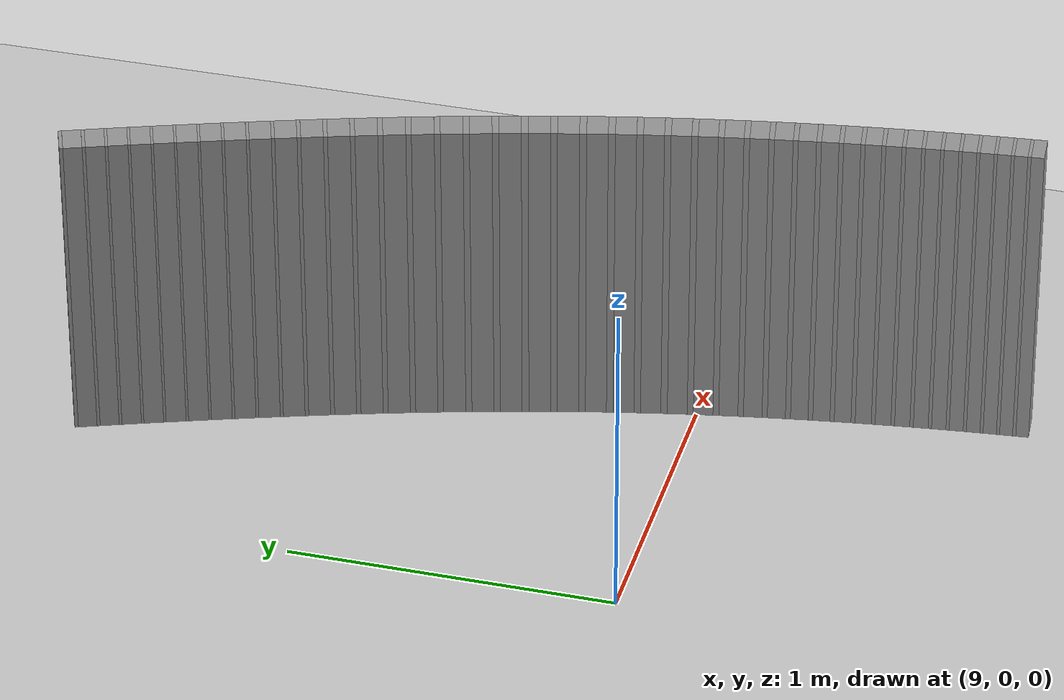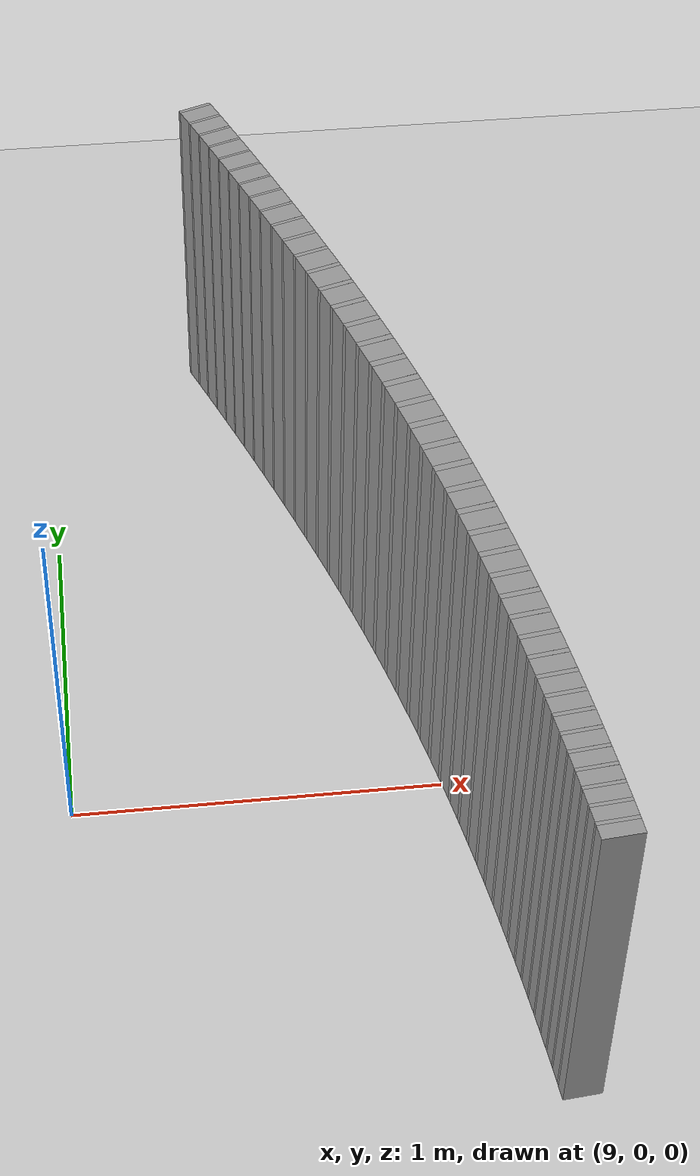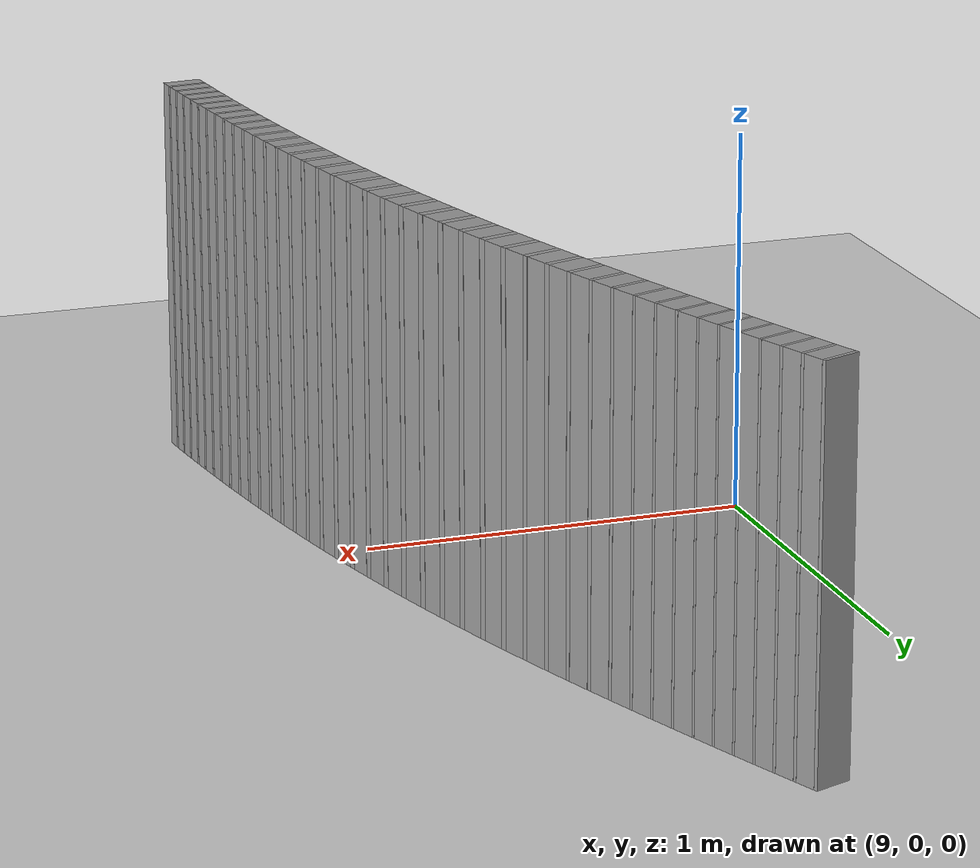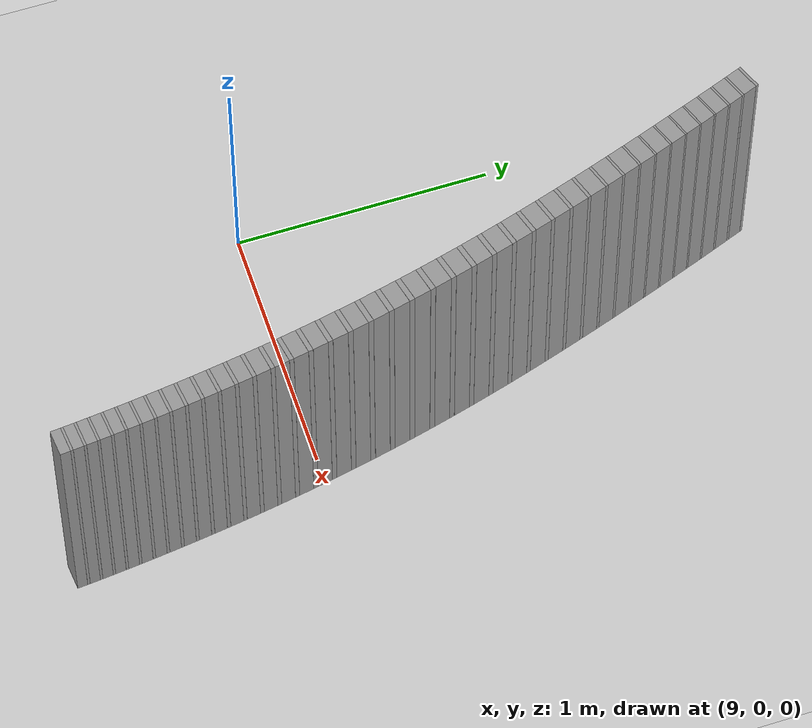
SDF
<sdf version="1.6">
 <world name="default">
  <include><uri>model://ground_plane</uri></include>
  <include><uri>model://sun</uri></include>
  <model name="wall_351_outward">
   <static>true</static>
   <link name="link">
    <collision name="collision">
     <geometry><box><size>0.010824604079195293 0.1 1.0</size></box></geometry>
    </collision>
    <visual name="visual">
     <geometry><box><size>0.010824604079195293 0.1 1.0</size></box></geometry>
     <material>
      <script><uri>file://media/materials/scripts/gazebo.material</uri><name>Gazebo/Gray</name></script>
     </material>
    </visual>
   </link>
   <pose>9.500279561167591 1.8287015190539146 0.5 0 0 -1.2032493338733514</pose>
  </model>
  <model name="wall_352_outward">
   <static>true</static>
   <link name="link">
    <collision name="collision">
     <geometry><box><size>0.05696659014981808 0.1 1.0</size></box></geometry>
    </collision>
    <visual name="visual">
     <geometry><box><size>0.05696659014981808 0.1 1.0</size></box></geometry>
     <material>
      <script><uri>file://media/materials/scripts/gazebo.material</uri><name>Gazebo/Gray</name></script>
     </material>
    </visual>
   </link>
   <pose>9.512387206424139 1.7970421554921758 0.5 0 0 -1.2059554881961672</pose>
  </model>
  <model name="wall_353_outward">
   <static>true</static>
   <link name="link">
    <collision name="collision">
     <geometry><box><size>0.009685782918412175 0.1 1.0</size></box></geometry>
    </collision>
    <visual name="visual">
     <geometry><box><size>0.009685782918412175 0.1 1.0</size></box></geometry>
     <material>
      <script><uri>file://media/materials/scripts/gazebo.material</uri><name>Gazebo/Gray</name></script>
     </material>
    </visual>
   </link>
   <pose>9.524267050212085 1.7659053089647365 0.5 0 0 -1.208376936292259</pose>
  </model>
  <model name="wall_354_outward">
   <static>true</static>
   <link name="link">
    <collision name="collision">
     <geometry><box><size>0.05791694749618283 0.1 1.0</size></box></geometry>
    </collision>
    <visual name="visual">
     <geometry><box><size>0.05791694749618283 0.1 1.0</size></box></geometry>
     <material>
      <script><uri>file://media/materials/scripts/gazebo.material</uri><name>Gazebo/Gray</name></script>
     </material>
    </visual>
   </link>
   <pose>9.536185305213749 1.7342748384451256 0.5 0 0 -1.2107983843880203</pose>
  </model>
  <model name="wall_355_outward">
   <static>true</static>
   <link name="link">
    <collision name="collision">
     <geometry><box><size>0.00872866118314216 0.1 1.0</size></box></geometry>
    </collision>
    <visual name="visual">
     <geometry><box><size>0.00872866118314216 0.1 1.0</size></box></geometry>
     <material>
      <script><uri>file://media/materials/scripts/gazebo.material</uri><name>Gazebo/Gray</name></script>
     </material>
    </visual>
   </link>
   <pose>9.547915089534156 1.7030847623465861 0.5 0 0 -1.2129805514156782</pose>
  </model>
  <model name="wall_356_outward">
   <static>true</static>
   <link name="link">
    <collision name="collision">
     <geometry><box><size>0.05895947732057909 0.1 1.0</size></box></geometry>
    </collision>
    <visual name="visual">
     <geometry><box><size>0.05895947732057909 0.1 1.0</size></box></geometry>
     <material>
      <script><uri>file://media/materials/scripts/gazebo.material</uri><name>Gazebo/Gray</name></script>
     </material>
    </visual>
   </link>
   <pose>9.55970799048509 1.6713617754438745 0.5 0 0 -1.2151627184432954</pose>
  </model>
  <model name="wall_357_outward">
   <static>true</static>
   <link name="link">
    <collision name="collision">
     <geometry><box><size>0.008040833445502221 0.1 1.0</size></box></geometry>
    </collision>
    <visual name="visual">
     <geometry><box><size>0.008040833445502221 0.1 1.0</size></box></geometry>
     <material>
      <script><uri>file://media/materials/scripts/gazebo.material</uri><name>Gazebo/Gray</name></script>
     </material>
    </visual>
   </link>
   <pose>9.571364642866486 1.639955050256243 0.5 0 0 -1.2171729281585102</pose>
  </model>
  <model name="wall_358_outward">
   <static>true</static>
   <link name="link">
    <collision name="collision">
     <geometry><box><size>0.06006452948803042 0.1 1.0</size></box></geometry>
    </collision>
    <visual name="visual">
     <geometry><box><size>0.06006452948803042 0.1 1.0</size></box></geometry>
     <material>
      <script><uri>file://media/materials/scripts/gazebo.material</uri><name>Gazebo/Gray</name></script>
     </material>
    </visual>
   </link>
   <pose>9.583100405023522 1.6079885597738917 0.5 0 0 -1.2191831378737743</pose>
  </model>
  <model name="wall_359_outward">
   <static>true</static>
   <link name="link">
    <collision name="collision">
     <geometry><box><size>0.007626050230554511 0.1 1.0</size></box></geometry>
    </collision>
    <visual name="visual">
     <geometry><box><size>0.007626050230554511 0.1 1.0</size></box></geometry>
     <material>
      <script><uri>file://media/materials/scripts/gazebo.material</uri><name>Gazebo/Gray</name></script>
     </material>
    </visual>
   </link>
   <pose>9.594750327050564 1.5762114839771881 0.5 0 0 -1.221089651586386</pose>
  </model>
  <model name="wall_360_outward">
   <static>true</static>
   <link name="link">
    <collision name="collision">
     <geometry><box><size>0.061197769607156366 0.1 1.0</size></box></geometry>
    </collision>
    <visual name="visual">
     <geometry><box><size>0.061197769607156366 0.1 1.0</size></box></geometry>
     <material>
      <script><uri>file://media/materials/scripts/gazebo.material</uri><name>Gazebo/Gray</name></script>
     </material>
    </visual>
   </link>
   <pose>9.606485787848996 1.5438624796644613 0.5 0 0 -1.2229961652989796</pose>
  </model>
  <model name="wall_361_outward">
   <static>true</static>
   <link name="link">
    <collision name="collision">
     <geometry><box><size>0.00750493864559816 0.1 1.0</size></box></geometry>
    </collision>
    <visual name="visual">
     <geometry><box><size>0.00750493864559816 0.1 1.0</size></box></geometry>
     <material>
      <script><uri>file://media/materials/scripts/gazebo.material</uri><name>Gazebo/Gray</name></script>
     </material>
    </visual>
   </link>
   <pose>9.618187156223485 1.5115655277296538 0.5 0 0 -1.2248724010613041</pose>
  </model>
  <model name="wall_362_outward">
   <static>true</static>
   <link name="link">
    <collision name="collision">
     <geometry><box><size>0.062325443852529264 0.1 1.0</size></box></geometry>
    </collision>
    <visual name="visual">
     <geometry><box><size>0.062325443852529264 0.1 1.0</size></box></geometry>
     <material>
      <script><uri>file://media/materials/scripts/gazebo.material</uri><name>Gazebo/Gray</name></script>
     </material>
    </visual>
   </link>
   <pose>9.629970687389939 1.4786988491393434 0.5 0 0 -1.2267486368233793</pose>
  </model>
  <model name="wall_363_outward">
   <static>true</static>
   <link name="link">
    <collision name="collision">
     <geometry><box><size>0.007730977619918335 0.1 1.0</size></box></geometry>
    </collision>
    <visual name="visual">
     <geometry><box><size>0.007730977619918335 0.1 1.0</size></box></geometry>
     <material>
      <script><uri>file://media/materials/scripts/gazebo.material</uri><name>Gazebo/Gray</name></script>
     </material>
    </visual>
   </link>
   <pose>9.641778678761174 1.4457208801724346 0.5 0 0 -1.2286813824317024</pose>
  </model>
  <model name="wall_364_outward">
   <static>true</static>
   <link name="link">
    <collision name="collision">
     <geometry><box><size>0.06341487864373915 0.1 1.0</size></box></geometry>
    </collision>
    <visual name="visual">
     <geometry><box><size>0.06341487864373915 0.1 1.0</size></box></geometry>
     <material>
      <script><uri>file://media/materials/scripts/gazebo.material</uri><name>Gazebo/Gray</name></script>
     </material>
    </visual>
   </link>
   <pose>9.653654941701273 1.4121889977825548 0.5 0 0 -1.2306141280399456</pose>
  </model>
  <model name="wall_365_outward">
   <static>true</static>
   <link name="link">
    <collision name="collision">
     <geometry><box><size>0.008219961241809787 0.1 1.0</size></box></geometry>
    </collision>
    <visual name="visual">
     <geometry><box><size>0.008219961241809787 0.1 1.0</size></box></geometry>
     <material>
      <script><uri>file://media/materials/scripts/gazebo.material</uri><name>Gazebo/Gray</name></script>
     </material>
    </visual>
   </link>
   <pose>9.665597776180087 1.3784213249927175 0.5 0 0 -1.2326691197968294</pose>
  </model>
  <model name="wall_366_outward">
   <static>true</static>
   <link name="link">
    <collision name="collision">
     <geometry><box><size>0.06443366127297623 0.1 1.0</size></box></geometry>
    </collision>
    <visual name="visual">
     <geometry><box><size>0.06443366127297623 0.1 1.0</size></box></geometry>
     <material>
      <script><uri>file://media/materials/scripts/gazebo.material</uri><name>Gazebo/Gray</name></script>
     </material>
    </visual>
   </link>
   <pose>9.677585660440117 1.3441295287736508 0.5 0 0 -1.2347241115535736</pose>
  </model>
  <model name="wall_367_outward">
   <static>true</static>
   <link name="link">
    <collision name="collision">
     <geometry><box><size>0.008978671673354817 0.1 1.0</size></box></geometry>
    </collision>
    <visual name="visual">
     <geometry><box><size>0.008978671673354817 0.1 1.0</size></box></geometry>
     <material>
      <script><uri>file://media/materials/scripts/gazebo.material</uri><name>Gazebo/Gray</name></script>
     </material>
    </visual>
   </link>
   <pose>9.689681161390332 1.3094734934380263 0.5 0 0 -1.2369687813568935</pose>
  </model>
  <model name="wall_368_outward">
   <static>true</static>
   <link name="link">
    <collision name="collision">
     <geometry><box><size>0.0653541927147452 0.1 1.0</size></box></geometry>
    </collision>
    <visual name="visual">
     <geometry><box><size>0.0653541927147452 0.1 1.0</size></box></geometry>
     <material>
      <script><uri>file://media/materials/scripts/gazebo.material</uri><name>Gazebo/Gray</name></script>
     </material>
    </visual>
   </link>
   <pose>9.701789849512714 1.2743348734474278 0.5 0 0 -1.2392134511602302</pose>
  </model>
  <model name="wall_369_outward">
   <static>true</static>
   <link name="link">
    <collision name="collision">
     <geometry><box><size>0.010012991191626491 0.1 1.0</size></box></geometry>
    </collision>
    <visual name="visual">
     <geometry><box><size>0.010012991191626491 0.1 1.0</size></box></geometry>
     <material>
      <script><uri>file://media/materials/scripts/gazebo.material</uri><name>Gazebo/Gray</name></script>
     </material>
    </visual>
   </link>
   <pose>9.714045514460347 1.238699908117857 0.5 0 0 -1.2417167015724928</pose>
  </model>
  <model name="wall_370_outward">
   <static>true</static>
   <link name="link">
    <collision name="collision">
     <geometry><box><size>0.06615063007660306 0.1 1.0</size></box></geometry>
    </collision>
    <visual name="visual">
     <geometry><box><size>0.06615063007660306 0.1 1.0</size></box></geometry>
     <material>
      <script><uri>file://media/materials/scripts/gazebo.material</uri><name>Gazebo/Gray</name></script>
     </material>
    </visual>
   </link>
   <pose>9.72627410973893 1.202634901240741 0.5 0 0 -1.244219951984691</pose>
  </model>
  <model name="wall_371_outward">
   <static>true</static>
   <link name="link">
    <collision name="collision">
     <geometry><box><size>0.011228370497946028 0.1 1.0</size></box></geometry>
    </collision>
    <visual name="visual">
     <geometry><box><size>0.011228370497946028 0.1 1.0</size></box></geometry>
     <material>
      <script><uri>file://media/materials/scripts/gazebo.material</uri><name>Gazebo/Gray</name></script>
     </material>
    </visual>
   </link>
   <pose>9.73867085446103 1.1659852533629045 0.5 0 0 -1.2470270482957087</pose>
  </model>
  <model name="wall_372_outward">
   <static>true</static>
   <link name="link">
    <collision name="collision">
     <geometry><box><size>0.06680445289519221 0.1 1.0</size></box></geometry>
    </collision>
    <visual name="visual">
     <geometry><box><size>0.06680445289519221 0.1 1.0</size></box></geometry>
     <material>
      <script><uri>file://media/materials/scripts/gazebo.material</uri><name>Gazebo/Gray</name></script>
     </material>
    </visual>
   </link>
   <pose>9.750994690114307 1.1289663125514702 0.5 0 0 -1.2498341446067953</pose>
  </model>
  <model name="wall_373_outward">
   <static>true</static>
   <link name="link">
    <collision name="collision">
     <geometry><box><size>0.012600490278203706 0.1 1.0</size></box></geometry>
    </collision>
    <visual name="visual">
     <geometry><box><size>0.012600490278203706 0.1 1.0</size></box></geometry>
     <material>
      <script><uri>file://media/materials/scripts/gazebo.material</uri><name>Gazebo/Gray</name></script>
     </material>
    </visual>
   </link>
   <pose>9.763501173126208 1.0912851230202856 0.5 0 0 -1.2529842723862985</pose>
  </model>
  <model name="wall_374_outward">
   <static>true</static>
   <link name="link">
    <collision name="collision">
     <geometry><box><size>0.06730036058711637 0.1 1.0</size></box></geometry>
    </collision>
    <visual name="visual">
     <geometry><box><size>0.06730036058711637 0.1 1.0</size></box></geometry>
     <material>
      <script><uri>file://media/materials/scripts/gazebo.material</uri><name>Gazebo/Gray</name></script>
     </material>
    </visual>
   </link>
   <pose>9.775884493053969 1.0533023930494838 0.5 0 0 -1.2561344001657744</pose>
  </model>
  <model name="wall_375_outward">
   <static>true</static>
   <link name="link">
    <collision name="collision">
     <geometry><box><size>0.014037177138689027 0.1 1.0</size></box></geometry>
    </collision>
    <visual name="visual">
     <geometry><box><size>0.014037177138689027 0.1 1.0</size></box></geometry>
     <material>
      <script><uri>file://media/materials/scripts/gazebo.material</uri><name>Gazebo/Gray</name></script>
     </material>
    </visual>
   </link>
   <pose>9.788447839919375 1.0146228355571443 0.5 0 0 -1.2596437016533153</pose>
  </model>
  <model name="wall_376_outward">
   <static>true</static>
   <link name="link">
    <collision name="collision">
     <geometry><box><size>0.06762984032936992 0.1 1.0</size></box></geometry>
    </collision>
    <visual name="visual">
     <geometry><box><size>0.06762984032936992 0.1 1.0</size></box></geometry>
     <material>
      <script><uri>file://media/materials/scripts/gazebo.material</uri><name>Gazebo/Gray</name></script>
     </material>
    </visual>
   </link>
   <pose>9.800836236359636 0.9757139657923826 0.5 0 0 -1.2631530031410225</pose>
  </model>
  <model name="wall_377_outward">
   <static>true</static>
   <link name="link">
    <collision name="collision">
     <geometry><box><size>0.01550620877102754 0.1 1.0</size></box></geometry>
    </collision>
    <visual name="visual">
     <geometry><box><size>0.01550620877102754 0.1 1.0</size></box></geometry>
     <material>
      <script><uri>file://media/materials/scripts/gazebo.material</uri><name>Gazebo/Gray</name></script>
     </material>
    </visual>
   </link>
   <pose>9.813394931405 0.9360885206347724 0.5 0 0 -1.2670295650431065</pose>
  </model>
  <model name="wall_378_outward">
   <static>true</static>
   <link name="link">
    <collision name="collision">
     <geometry><box><size>0.06778951938092423 0.1 1.0</size></box></geometry>
    </collision>
    <visual name="visual">
     <geometry><box><size>0.06778951938092423 0.1 1.0</size></box></geometry>
     <material>
      <script><uri>file://media/materials/scripts/gazebo.material</uri><name>Gazebo/Gray</name></script>
     </material>
    </visual>
   </link>
   <pose>9.82572704473486 0.8963083796875166 0.5 0 0 -1.2709061269451785</pose>
  </model>
  <model name="wall_379_outward">
   <static>true</static>
   <link name="link">
    <collision name="collision">
     <geometry><box><size>0.016924516006018655 0.1 1.0</size></box></geometry>
    </collision>
    <visual name="visual">
     <geometry><box><size>0.016924516006018655 0.1 1.0</size></box></geometry>
     <material>
      <script><uri>file://media/materials/scripts/gazebo.material</uri><name>Gazebo/Gray</name></script>
     </material>
    </visual>
   </link>
   <pose>9.838205726925029 0.855831296000987 0.5 0 0 -1.2751372685713551</pose>
  </model>
  <model name="wall_380_outward">
   <static>true</static>
   <link name="link">
    <collision name="collision">
     <geometry><box><size>0.06777948563504108 0.1 1.0</size></box></geometry>
    </collision>
    <visual name="visual">
     <geometry><box><size>0.06777948563504108 0.1 1.0</size></box></geometry>
     <material>
      <script><uri>file://media/materials/scripts/gazebo.material</uri><name>Gazebo/Gray</name></script>
     </material>
    </visual>
   </link>
   <pose>9.850408586761766 0.8152754449909085 0.5 0 0 -1.2793684101975868</pose>
  </model>
  <model name="wall_381_outward">
   <static>true</static>
   <link name="link">
    <collision name="collision">
     <geometry><box><size>0.01820133226762513 0.1 1.0</size></box></geometry>
    </collision>
    <visual name="visual">
     <geometry><box><size>0.01820133226762513 0.1 1.0</size></box></geometry>
     <material>
      <script><uri>file://media/materials/scripts/gazebo.material</uri><name>Gazebo/Gray</name></script>
     </material>
    </visual>
   </link>
   <pose>9.862720908736062 0.7740859365769072 0.5 0 0 -1.2839187589674386</pose>
  </model>
  <model name="wall_382_outward">
   <static>true</static>
   <link name="link">
    <collision name="collision">
     <geometry><box><size>0.06760352954791443 0.1 1.0</size></box></geometry>
    </collision>
    <visual name="visual">
     <geometry><box><size>0.06760352954791443 0.1 1.0</size></box></geometry>
     <material>
      <script><uri>file://media/materials/scripts/gazebo.material</uri><name>Gazebo/Gray</name></script>
     </material>
    </visual>
   </link>
   <pose>9.874712905997761 0.7328936531972203 0.5 0 0 -1.288469107737367</pose>
  </model>
  <model name="wall_383_outward">
   <static>true</static>
   <link name="link">
    <collision name="collision">
     <geometry><box><size>0.01930399747526775 0.1 1.0</size></box></geometry>
    </collision>
    <visual name="visual">
     <geometry><box><size>0.01930399747526775 0.1 1.0</size></box></geometry>
     <material>
      <script><uri>file://media/materials/scripts/gazebo.material</uri><name>Gazebo/Gray</name></script>
     </material>
    </visual>
   </link>
   <pose>9.886773986775186 0.6911473683900671 0.5 0 0 -1.2932951258395073</pose>
  </model>
  <model name="wall_384_outward">
   <static>true</static>
   <link name="link">
    <collision name="collision">
     <geometry><box><size>0.06726861556545626 0.1 1.0</size></box></geometry>
    </collision>
    <visual name="visual">
     <geometry><box><size>0.06726861556545626 0.1 1.0</size></box></geometry>
     <material>
      <script><uri>file://media/materials/scripts/gazebo.material</uri><name>Gazebo/Gray</name></script>
     </material>
    </visual>
   </link>
   <pose>9.898476196853656 0.6494729751671713 0.5 0 0 -1.2981211439416696</pose>
  </model>
  <model name="wall_385_outward">
   <static>true</static>
   <link name="link">
    <collision name="collision">
     <geometry><box><size>0.020187158126776683 0.1 1.0</size></box></geometry>
    </collision>
    <visual name="visual">
     <geometry><box><size>0.020187158126776683 0.1 1.0</size></box></geometry>
     <material>
      <script><uri>file://media/materials/scripts/gazebo.material</uri><name>Gazebo/Gray</name></script>
     </material>
    </visual>
   </link>
   <pose>9.910203406328362 0.6073470686599498 0.5 0 0 -1.3031679548972952</pose>
  </model>
  <model name="wall_386_outward">
   <static>true</static>
   <link name="link">
    <collision name="collision">
     <geometry><box><size>0.06678113001132327 0.1 1.0</size></box></geometry>
    </collision>
    <visual name="visual">
     <geometry><box><size>0.06678113001132327 0.1 1.0</size></box></geometry>
     <material>
      <script><uri>file://media/materials/scripts/gazebo.material</uri><name>Gazebo/Gray</name></script>
     </material>
    </visual>
   </link>
   <pose>9.92153994145281 0.5653667736092367 0.5 0 0 -1.3082147658529208</pose>
  </model>
  <model name="wall_387_outward">
   <static>true</static>
   <link name="link">
    <collision name="collision">
     <geometry><box><size>0.020806349528600988 0.1 1.0</size></box></geometry>
    </collision>
    <visual name="visual">
     <geometry><box><size>0.020806349528600988 0.1 1.0</size></box></geometry>
     <material>
      <script><uri>file://media/materials/scripts/gazebo.material</uri><name>Gazebo/Gray</name></script>
     </material>
    </visual>
   </link>
   <pose>9.93285538426418 0.5230602374901547 0.5 0 0 -1.3134163766915676</pose>
  </model>
  <model name="wall_388_outward">
   <static>true</static>
   <link name="link">
    <collision name="collision">
     <geometry><box><size>0.0661501846387857 0.1 1.0</size></box></geometry>
    </collision>
    <visual name="visual">
     <geometry><box><size>0.0661501846387857 0.1 1.0</size></box></geometry>
     <material>
      <script><uri>file://media/materials/scripts/gazebo.material</uri><name>Gazebo/Gray</name></script>
     </material>
    </visual>
   </link>
   <pose>9.943756186563618 0.4809707743431778 0.5 0 0 -1.3186179875300492</pose>
  </model>
  <model name="wall_389_outward">
   <static>true</static>
   <link name="link">
    <collision name="collision">
     <geometry><box><size>0.021141537625596517 0.1 1.0</size></box></geometry>
    </collision>
    <visual name="visual">
     <geometry><box><size>0.021141537625596517 0.1 1.0</size></box></geometry>
     <material>
      <script><uri>file://media/materials/scripts/gazebo.material</uri><name>Gazebo/Gray</name></script>
     </material>
    </visual>
   </link>
   <pose>9.954592299248988 0.4386915821940718 0.5 0 0 -1.3239033965449751</pose>
  </model>
  <model name="wall_390_outward">
   <static>true</static>
   <link name="link">
    <collision name="collision">
     <geometry><box><size>0.06538371986400028 0.1 1.0</size></box></geometry>
    </collision>
    <visual name="visual">
     <geometry><box><size>0.06538371986400028 0.1 1.0</size></box></geometry>
     <material>
      <script><uri>file://media/materials/scripts/gazebo.material</uri><name>Gazebo/Gray</name></script>
     </material>
    </visual>
   </link>
   <pose>9.964997691154998 0.3966990446272436 0.5 0 0 -1.329188805559738</pose>
  </model>
  <model name="wall_391_outward">
   <static>true</static>
   <link name="link">
    <collision name="collision">
     <geometry><box><size>0.021191313764563614 0.1 1.0</size></box></geometry>
    </collision>
    <visual name="visual">
     <geometry><box><size>0.021191313764563614 0.1 1.0</size></box></geometry>
     <material>
      <script><uri>file://media/materials/scripts/gazebo.material</uri><name>Gazebo/Gray</name></script>
     </material>
    </visual>
   </link>
   <pose>9.975300286291112 0.3546555442595535 0.5 0 0 -1.3344866587835131</pose>
  </model>
  <model name="wall_392_outward">
   <static>true</static>
   <link name="link">
    <collision name="collision">
     <geometry><box><size>0.06449062980923927 0.1 1.0</size></box></geometry>
    </collision>
    <visual name="visual">
     <geometry><box><size>0.06449062980923927 0.1 1.0</size></box></geometry>
     <material>
      <script><uri>file://media/materials/scripts/gazebo.material</uri><name>Gazebo/Gray</name></script>
     </material>
    </visual>
   </link>
   <pose>9.98516387432132 0.31296563054682913 0.5 0 0 -1.3397845120073384</pose>
  </model>
  <model name="wall_393_outward">
   <static>true</static>
   <link name="link">
    <collision name="collision">
     <geometry><box><size>0.02100386026287018 0.1 1.0</size></box></geometry>
    </collision>
    <visual name="visual">
     <geometry><box><size>0.02100386026287018 0.1 1.0</size></box></geometry>
     <material>
      <script><uri>file://media/materials/scripts/gazebo.material</uri><name>Gazebo/Gray</name></script>
     </material>
    </visual>
   </link>
   <pose>9.994897680195956 0.2713414711660062 0.5 0 0 -1.3450355012038853</pose>
  </model>
  <model name="wall_394_outward">
   <static>true</static>
   <link name="link">
    <collision name="collision">
     <geometry><box><size>0.0634804287747851 0.1 1.0</size></box></geometry>
    </collision>
    <visual name="visual">
     <geometry><box><size>0.0634804287747851 0.1 1.0</size></box></geometry>
     <material>
      <script><uri>file://media/materials/scripts/gazebo.material</uri><name>Gazebo/Gray</name></script>
     </material>
    </visual>
   </link>
   <pose>10.004190962085417 0.23013437839878728 0.5 0 0 -1.350286490400352</pose>
  </model>
  <model name="wall_395_outward">
   <static>true</static>
   <link name="link">
    <collision name="collision">
     <geometry><box><size>0.020565626386248845 0.1 1.0</size></box></geometry>
    </collision>
    <visual name="visual">
     <geometry><box><size>0.020565626386248845 0.1 1.0</size></box></geometry>
     <material>
      <script><uri>file://media/materials/scripts/gazebo.material</uri><name>Gazebo/Gray</name></script>
     </material>
    </visual>
   </link>
   <pose>10.013330921132034 0.18911746276526603 0.5 0 0 -1.3554279196485495</pose>
  </model>
  <model name="wall_396_outward">
   <static>true</static>
   <link name="link">
    <collision name="collision">
     <geometry><box><size>0.06236197029041892 0.1 1.0</size></box></geometry>
    </collision>
    <visual name="visual">
     <geometry><box><size>0.06236197029041892 0.1 1.0</size></box></geometry>
     <material>
      <script><uri>file://media/materials/scripts/gazebo.material</uri><name>Gazebo/Gray</name></script>
     </material>
    </visual>
   </link>
   <pose>10.022035340559508 0.14857771462211888 0.5 0 0 -1.3605693488967685</pose>
  </model>
  <model name="wall_397_outward">
   <static>true</static>
   <link name="link">
    <collision name="collision">
     <geometry><box><size>0.019933269371030814 0.1 1.0</size></box></geometry>
    </collision>
    <visual name="visual">
     <geometry><box><size>0.019933269371030814 0.1 1.0</size></box></geometry>
     <material>
      <script><uri>file://media/materials/scripts/gazebo.material</uri><name>Gazebo/Gray</name></script>
     </material>
    </visual>
   </link>
   <pose>10.030573504224158 0.10832577477516836 0.5 0 0 -1.36555268686521</pose>
  </model>
  <model name="wall_398_outward">
   <static>true</static>
   <link name="link">
    <collision name="collision">
     <geometry><box><size>0.06114658493690783 0.1 1.0</size></box></geometry>
    </collision>
    <visual name="visual">
     <geometry><box><size>0.06114658493690783 0.1 1.0</size></box></geometry>
     <material>
      <script><uri>file://media/materials/scripts/gazebo.material</uri><name>Gazebo/Gray</name></script>
     </material>
    </visual>
   </link>
   <pose>10.038686536106361 0.06860604617326355 0.5 0 0 -1.370536024833735</pose>
  </model>
  <model name="wall_399_outward">
   <static>true</static>
   <link name="link">
    <collision name="collision">
     <geometry><box><size>0.01918659729865957 0.1 1.0</size></box></geometry>
    </collision>
    <visual name="visual">
     <geometry><box><size>0.01918659729865957 0.1 1.0</size></box></geometry>
     <material>
      <script><uri>file://media/materials/scripts/gazebo.material</uri><name>Gazebo/Gray</name></script>
     </material>
    </visual>
   </link>
   <pose>10.0466315346316 0.029233145692770857 0.5 0 0 -1.3753326925520384</pose>
  </model>
  <model name="wall_400_outward">
   <static>true</static>
   <link name="link">
    <collision name="collision">
     <geometry><box><size>0.05984606902844167 0.1 1.0</size></box></geometry>
    </collision>
    <visual name="visual">
     <geometry><box><size>0.05984606902844167 0.1 1.0</size></box></geometry>
     <material>
      <script><uri>file://media/materials/scripts/gazebo.material</uri><name>Gazebo/Gray</name></script>
     </material>
    </visual>
   </link>
   <pose>10.054165586638948 -0.009558245650663433 0.5 0 0 -1.3801293602703</pose>
  </model>
  <model name="wall_401_outward">
   <static>true</static>
   <link name="link">
    <collision name="collision">
     <geometry><box><size>0.018289415067074946 0.1 1.0</size></box></geometry>
    </collision>
    <visual name="visual">
     <geometry><box><size>0.018289415067074946 0.1 1.0</size></box></geometry>
     <material>
      <script><uri>file://media/materials/scripts/gazebo.material</uri><name>Gazebo/Gray</name></script>
     </material>
    </visual>
   </link>
   <pose>10.061528390327078 -0.047925834443187654 0.5 0 0 -1.3847017299691708</pose>
  </model>
  <model name="wall_402_outward">
   <static>true</static>
   <link name="link">
    <collision name="collision">
     <geometry><box><size>0.05847254540541961 0.1 1.0</size></box></geometry>
    </collision>
    <visual name="visual">
     <geometry><box><size>0.05847254540541961 0.1 1.0</size></box></geometry>
     <material>
      <script><uri>file://media/materials/scripts/gazebo.material</uri><name>Gazebo/Gray</name></script>
     </material>
    </visual>
   </link>
   <pose>10.068498302104476 -0.08566857393306032 0.5 0 0 -1.389274099667985</pose>
  </model>
  <model name="wall_403_outward">
   <static>true</static>
   <link name="link">
    <collision name="collision">
     <geometry><box><size>0.017375664238890105 0.1 1.0</size></box></geometry>
    </collision>
    <visual name="visual">
     <geometry><box><size>0.017375664238890105 0.1 1.0</size></box></geometry>
     <material>
      <script><uri>file://media/materials/scripts/gazebo.material</uri><name>Gazebo/Gray</name></script>
     </material>
    </visual>
   </link>
   <pose>10.075307492980366 -0.12297631915141954 0.5 0 0 -1.393618029389123</pose>
  </model>
  <model name="wall_404_outward">
   <static>true</static>
   <link name="link">
    <collision name="collision">
     <geometry><box><size>0.05704011917131678 0.1 1.0</size></box></geometry>
    </collision>
    <visual name="visual">
     <geometry><box><size>0.05704011917131678 0.1 1.0</size></box></geometry>
     <material>
      <script><uri>file://media/materials/scripts/gazebo.material</uri><name>Gazebo/Gray</name></script>
     </material>
    </visual>
   </link>
   <pose>10.08174348953245 -0.15962329007719245 0.5 0 0 -1.3979619591103247</pose>
  </model>
  <model name="wall_405_outward">
   <static>true</static>
   <link name="link">
    <collision name="collision">
     <geometry><box><size>0.016406116898297452 0.1 1.0</size></box></geometry>
    </collision>
    <visual name="visual">
     <geometry><box><size>0.016406116898297452 0.1 1.0</size></box></geometry>
     <material>
      <script><uri>file://media/materials/scripts/gazebo.material</uri><name>Gazebo/Gray</name></script>
     </material>
    </visual>
   </link>
   <pose>10.088025798515048 -0.19580499894184433 0.5 0 0 -1.4020634998346782</pose>
  </model>
  <model name="wall_406_outward">
   <static>true</static>
   <link name="link">
    <collision name="collision">
     <geometry><box><size>0.05556135067396677 0.1 1.0</size></box></geometry>
    </collision>
    <visual name="visual">
     <geometry><box><size>0.05556135067396677 0.1 1.0</size></box></geometry>
     <material>
      <script><uri>file://media/materials/scripts/gazebo.material</uri><name>Gazebo/Gray</name></script>
     </material>
    </visual>
   </link>
   <pose>10.093956301620612 -0.23129660916820233 0.5 0 0 -1.40616504055903</pose>
  </model>
  <model name="wall_407_outward">
   <static>true</static>
   <link name="link">
    <collision name="collision">
     <geometry><box><size>0.015480412930420804 0.1 1.0</size></box></geometry>
    </collision>
    <visual name="visual">
     <geometry><box><size>0.015480412930420804 0.1 1.0</size></box></geometry>
     <material>
      <script><uri>file://media/materials/scripts/gazebo.material</uri><name>Gazebo/Gray</name></script>
     </material>
    </visual>
   </link>
   <pose>10.099748209833919 -0.2663420599801817 0.5 0 0 -1.410035153452588</pose>
  </model>
  <model name="wall_408_outward">
   <static>true</static>
   <link name="link">
    <collision name="collision">
     <geometry><box><size>0.05405234113677654 0.1 1.0</size></box></geometry>
    </collision>
    <visual name="visual">
     <geometry><box><size>0.05405234113677654 0.1 1.0</size></box></geometry>
     <material>
      <script><uri>file://media/materials/scripts/gazebo.material</uri><name>Gazebo/Gray</name></script>
     </material>
    </visual>
   </link>
   <pose>10.105209972495075 -0.30067669245974676 0.5 0 0 -1.4139052663461178</pose>
  </model>
  <model name="wall_409_outward">
   <static>true</static>
   <link name="link">
    <collision name="collision">
     <geometry><box><size>0.014568164671066716 0.1 1.0</size></box></geometry>
    </collision>
    <visual name="visual">
     <geometry><box><size>0.014568164671066716 0.1 1.0</size></box></geometry>
     <material>
      <script><uri>file://media/materials/scripts/gazebo.material</uri><name>Gazebo/Gray</name></script>
     </material>
    </visual>
   </link>
   <pose>10.110544677510072 -0.33456963811915685 0.5 0 0 -1.417547315565488</pose>
  </model>
  <model name="wall_410_outward">
   <static>true</static>
   <link name="link">
    <collision name="collision">
     <geometry><box><size>0.05252701804898577 0.1 1.0</size></box></geometry>
    </collision>
    <visual name="visual">
     <geometry><box><size>0.05252701804898577 0.1 1.0</size></box></geometry>
     <material>
      <script><uri>file://media/materials/scripts/gazebo.material</uri><name>Gazebo/Gray</name></script>
     </material>
    </visual>
   </link>
   <pose>10.115571154497893 -0.36773849214783977 0.5 0 0 -1.4211893647849885</pose>
  </model>
  <model name="wall_411_outward">
   <static>true</static>
   <link name="link">
    <collision name="collision">
     <geometry><box><size>0.013707110111743503 0.1 1.0</size></box></geometry>
    </collision>
    <visual name="visual">
     <geometry><box><size>0.013707110111743503 0.1 1.0</size></box></geometry>
     <material>
      <script><uri>file://media/materials/scripts/gazebo.material</uri><name>Gazebo/Gray</name></script>
     </material>
    </visual>
   </link>
   <pose>10.120484006953681 -0.40048909062112586 0.5 0 0 -1.4246161490197198</pose>
  </model>
  <model name="wall_412_outward">
   <static>true</static>
   <link name="link">
    <collision name="collision">
     <geometry><box><size>0.051000068948404066 0.1 1.0</size></box></geometry>
    </collision>
    <visual name="visual">
     <geometry><box><size>0.051000068948404066 0.1 1.0</size></box></geometry>
     <material>
      <script><uri>file://media/materials/scripts/gazebo.material</uri><name>Gazebo/Gray</name></script>
     </material>
    </visual>
   </link>
   <pose>10.125110161954467 -0.4325101991769137 0.5 0 0 -1.428042933254257</pose>
  </model>
  <model name="wall_413_outward">
   <static>true</static>
   <link name="link">
    <collision name="collision">
     <geometry><box><size>0.012912710478121422 0.1 1.0</size></box></geometry>
    </collision>
    <visual name="visual">
     <geometry><box><size>0.012912710478121422 0.1 1.0</size></box></geometry>
     <material>
      <script><uri>file://media/materials/scripts/gazebo.material</uri><name>Gazebo/Gray</name></script>
     </material>
    </visual>
   </link>
   <pose>10.129635931690782 -0.4641444612370388 0.5 0 0 -1.4312711164806586</pose>
  </model>
  <model name="wall_414_outward">
   <static>true</static>
   <link name="link">
    <collision name="collision">
     <geometry><box><size>0.049486988402966094 0.1 1.0</size></box></geometry>
    </collision>
    <visual name="visual">
     <geometry><box><size>0.049486988402966094 0.1 1.0</size></box></geometry>
     <material>
      <script><uri>file://media/materials/scripts/gazebo.material</uri><name>Gazebo/Gray</name></script>
     </material>
    </visual>
   </link>
   <pose>10.133895868838461 -0.4950520958246515 0.5 0 0 -1.4344992997071242</pose>
  </model>
  <model name="wall_415_outward">
   <static>true</static>
   <link name="link">
    <collision name="collision">
     <geometry><box><size>0.012181041512240726 0.1 1.0</size></box></geometry>
    </collision>
    <visual name="visual">
     <geometry><box><size>0.012181041512240726 0.1 1.0</size></box></geometry>
     <material>
      <script><uri>file://media/materials/scripts/gazebo.material</uri><name>Gazebo/Gray</name></script>
     </material>
    </visual>
   </link>
   <pose>10.138067074622512 -0.5256026461170658 0.5 0 0 -1.4375445647919958</pose>
  </model>
  <model name="wall_416_outward">
   <static>true</static>
   <link name="link">
    <collision name="collision">
     <geometry><box><size>0.04800331364225579 0.1 1.0</size></box></geometry>
    </collision>
    <visual name="visual">
     <geometry><box><size>0.04800331364225579 0.1 1.0</size></box></geometry>
     <material>
      <script><uri>file://media/materials/scripts/gazebo.material</uri><name>Gazebo/Gray</name></script>
     </material>
    </visual>
   </link>
   <pose>10.141992596241607 -0.5554376603740604 0.5 0 0 -1.4405898298768036</pose>
  </model>
  <model name="wall_417_outward">
   <static>true</static>
   <link name="link">
    <collision name="collision">
     <geometry><box><size>0.011554241920305956 0.1 1.0</size></box></geometry>
    </collision>
    <visual name="visual">
     <geometry><box><size>0.011554241920305956 0.1 1.0</size></box></geometry>
     <material>
      <script><uri>file://media/materials/scripts/gazebo.material</uri><name>Gazebo/Gray</name></script>
     </material>
    </visual>
   </link>
   <pose>10.145842490389096 -0.5849665066814411 0.5 0 0 -1.4434783943737215</pose>
  </model>
  <model name="wall_418_outward">
   <static>true</static>
   <link name="link">
    <collision name="collision">
     <geometry><box><size>0.04656420439979564 0.1 1.0</size></box></geometry>
    </collision>
    <visual name="visual">
     <geometry><box><size>0.04656420439979564 0.1 1.0</size></box></geometry>
     <material>
      <script><uri>file://media/materials/scripts/gazebo.material</uri><name>Gazebo/Gray</name></script>
     </material>
    </visual>
   </link>
   <pose>10.149465543509091 -0.6137989678057534 0.5 0 0 -1.446366958870826</pose>
  </model>
  <model name="wall_419_outward">
   <static>true</static>
   <link name="link">
    <collision name="collision">
     <geometry><box><size>0.010986739006908742 0.1 1.0</size></box></geometry>
    </collision>
    <visual name="visual">
     <geometry><box><size>0.010986739006908742 0.1 1.0</size></box></geometry>
     <material>
      <script><uri>file://media/materials/scripts/gazebo.material</uri><name>Gazebo/Gray</name></script>
     </material>
    </visual>
   </link>
   <pose>10.153021850626203 -0.6423538182964412 0.5 0 0 -1.4491136470762893</pose>
  </model>
  <model name="wall_420_outward">
   <static>true</static>
   <link name="link">
    <collision name="collision">
     <geometry><box><size>0.045185807111506215 0.1 1.0</size></box></geometry>
    </collision>
    <visual name="visual">
     <geometry><box><size>0.045185807111506215 0.1 1.0</size></box></geometry>
     <material>
      <script><uri>file://media/materials/scripts/gazebo.material</uri><name>Gazebo/Gray</name></script>
     </material>
    </visual>
   </link>
   <pose>10.156369428846695 -0.6702398635177208 0.5 0 0 -1.451860335281554</pose>
  </model>
  <model name="wall_421_outward">
   <static>true</static>
   <link name="link">
    <collision name="collision">
     <geometry><box><size>0.010552439424653453 0.1 1.0</size></box></geometry>
    </collision>
    <visual name="visual">
     <geometry><box><size>0.010552439424653453 0.1 1.0</size></box></geometry>
     <material>
      <script><uri>file://media/materials/scripts/gazebo.material</uri><name>Gazebo/Gray</name></script>
     </material>
    </visual>
   </link>
   <pose>10.159662438394545 -0.6979137373019413 0.5 0 0 -1.4544984481977317</pose>
  </model>
  <model name="wall_422_outward">
   <static>true</static>
   <link name="link">
    <collision name="collision">
     <geometry><box><size>0.04388280160493129 0.1 1.0</size></box></geometry>
    </collision>
    <visual name="visual">
     <geometry><box><size>0.04388280160493129 0.1 1.0</size></box></geometry>
     <material>
      <script><uri>file://media/materials/scripts/gazebo.material</uri><name>Gazebo/Gray</name></script>
     </material>
    </visual>
   </link>
   <pose>10.162763157729827 -0.7249541441108331 0.5 0 0 -1.457136561113984</pose>
  </model>
  <model name="wall_423_outward">
   <static>true</static>
   <link name="link">
    <collision name="collision">
     <geometry><box><size>0.010176031379441685 0.1 1.0</size></box></geometry>
    </collision>
    <visual name="visual">
     <geometry><box><size>0.010176031379441685 0.1 1.0</size></box></geometry>
     <material>
      <script><uri>file://media/materials/scripts/gazebo.material</uri><name>Gazebo/Gray</name></script>
     </material>
    </visual>
   </link>
   <pose>10.165815842213394 -0.7518106098282543 0.5 0 0 -1.4596805717030075</pose>
  </model>
  <model name="wall_424_outward">
   <static>true</static>
   <link name="link">
    <collision name="collision">
     <geometry><box><size>0.04267014572625291 0.1 1.0</size></box></geometry>
    </collision>
    <visual name="visual">
     <geometry><box><size>0.04267014572625291 0.1 1.0</size></box></geometry>
     <material>
      <script><uri>file://media/materials/scripts/gazebo.material</uri><name>Gazebo/Gray</name></script>
     </material>
    </visual>
   </link>
   <pose>10.168691876152778 -0.7780766969920552 0.5 0 0 -1.4622245822919733</pose>
  </model>
  <model name="wall_425_outward">
   <static>true</static>
   <link name="link">
    <collision name="collision">
     <geometry><box><size>0.00992715568581547 0.1 1.0</size></box></geometry>
    </collision>
    <visual name="visual">
     <geometry><box><size>0.00992715568581547 0.1 1.0</size></box></geometry>
     <material>
      <script><uri>file://media/materials/scripts/gazebo.material</uri><name>Gazebo/Gray</name></script>
     </material>
    </visual>
   </link>
   <pose>10.171529312557679 -0.8042218175951099 0.5 0 0 -1.4647063737610515</pose>
  </model>
  <model name="wall_426_outward">
   <static>true</static>
   <link name="link">
    <collision name="collision">
     <geometry><box><size>0.0415618293962378 0.1 1.0</size></box></geometry>
    </collision>
    <visual name="visual">
     <geometry><box><size>0.0415618293962378 0.1 1.0</size></box></geometry>
     <material>
      <script><uri>file://media/materials/scripts/gazebo.material</uri><name>Gazebo/Gray</name></script>
     </material>
    </visual>
   </link>
   <pose>10.174204133414094 -0.829826965403021 0.5 0 0 -1.467188165230236</pose>
  </model>
  <model name="wall_427_outward">
   <static>true</static>
   <link name="link">
    <collision name="collision">
     <geometry><box><size>0.009837026426008777 0.1 1.0</size></box></geometry>
    </collision>
    <visual name="visual">
     <geometry><box><size>0.009837026426008777 0.1 1.0</size></box></geometry>
     <material>
      <script><uri>file://media/materials/scripts/gazebo.material</uri><name>Gazebo/Gray</name></script>
     </material>
    </visual>
   </link>
   <pose>10.176850010083148 -0.8553898156635593 0.5 0 0 -1.4696474243156445</pose>
  </model>
  <model name="wall_428_outward">
   <static>true</static>
   <link name="link">
    <collision name="collision">
     <geometry><box><size>0.040569489250352066 0.1 1.0</size></box></geometry>
    </collision>
    <visual name="visual">
     <geometry><box><size>0.040569489250352066 0.1 1.0</size></box></geometry>
     <material>
      <script><uri>file://media/materials/scripts/gazebo.material</uri><name>Gazebo/Gray</name></script>
     </material>
    </visual>
   </link>
   <pose>10.179345310569952 -0.8804692310819743 0.5 0 0 -1.4721066834010688</pose>
  </model>
  <model name="wall_429_outward">
   <static>true</static>
   <link name="link">
    <collision name="collision">
     <geometry><box><size>0.009873023505226817 0.1 1.0</size></box></geometry>
    </collision>
    <visual name="visual">
     <geometry><box><size>0.009873023505226817 0.1 1.0</size></box></geometry>
     <material>
      <script><uri>file://media/materials/scripts/gazebo.material</uri><name>Gazebo/Gray</name></script>
     </material>
    </visual>
   </link>
   <pose>10.181818222113442 -0.9055689496404522 0.5 0 0 -1.4745749417835337</pose>
  </model>
  <model name="wall_430_outward">
   <static>true</static>
   <link name="link">
    <collision name="collision">
     <geometry><box><size>0.03970233068282648 0.1 1.0</size></box></geometry>
    </collision>
    <visual name="visual">
     <geometry><box><size>0.03970233068282648 0.1 1.0</size></box></geometry>
     <material>
      <script><uri>file://media/materials/scripts/gazebo.material</uri><name>Gazebo/Gray</name></script>
     </material>
    </visual>
   </link>
   <pose>10.184150871085272 -0.9302466133765974 0.5 0 0 -1.477043200166137</pose>
  </model>
  <model name="wall_431_outward">
   <static>true</static>
   <link name="link">
    <collision name="collision">
     <geometry><box><size>0.010007956521354344 0.1 1.0</size></box></geometry>
    </collision>
    <visual name="visual">
     <geometry><box><size>0.010007956521354344 0.1 1.0</size></box></geometry>
     <material>
      <script><uri>file://media/materials/scripts/gazebo.material</uri><name>Gazebo/Gray</name></script>
     </material>
    </visual>
   </link>
   <pose>10.186465239951655 -0.9549937594423368 0.5 0 0 -1.4795451919069667</pose>
  </model>
  <model name="wall_432_outward">
   <static>true</static>
   <link name="link">
    <collision name="collision">
     <geometry><box><size>0.038966517390383926 0.1 1.0</size></box></geometry>
    </collision>
    <visual name="visual">
     <geometry><box><size>0.038966517390383926 0.1 1.0</size></box></geometry>
     <material>
      <script><uri>file://media/materials/scripts/gazebo.material</uri><name>Gazebo/Gray</name></script>
     </material>
    </visual>
   </link>
   <pose>10.188648078746471 -0.9793834986418747 0.5 0 0 -1.4820471836476041</pose>
  </model>
 </world>
</sdf>
